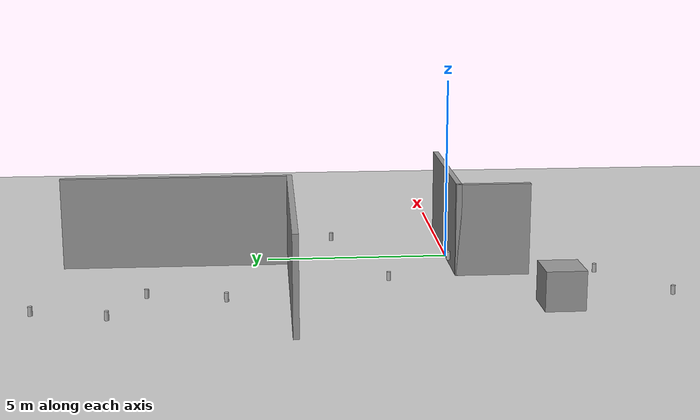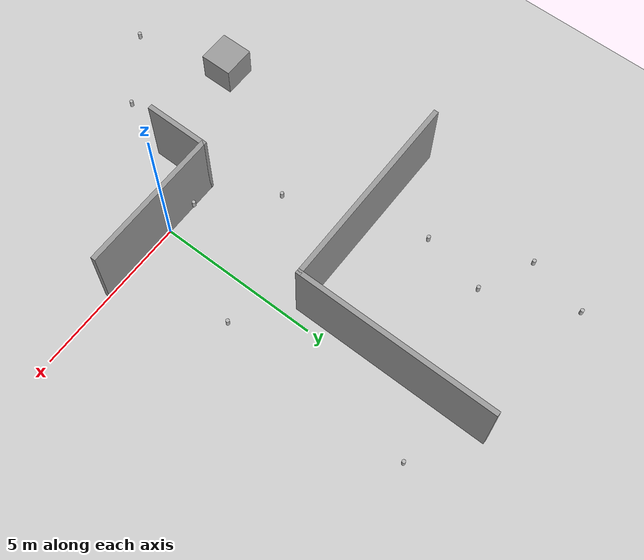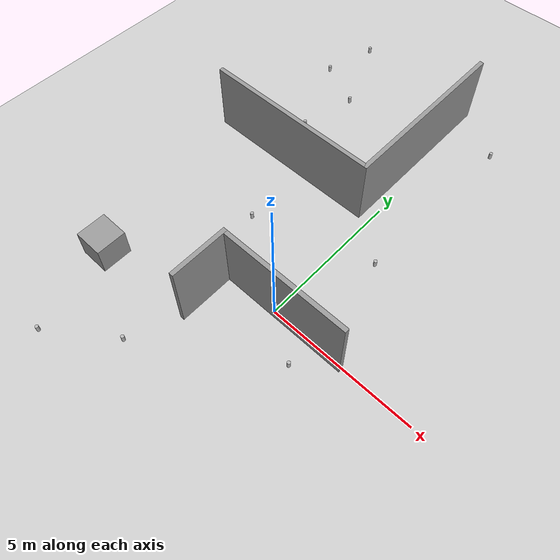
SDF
<sdf version="1.6">
 <world name="demo_world">
  <light name="sun" type="directional">
   <pose>0 0 10 0 -0 0</pose>
   <diffuse>0.8 0.8 0.8 1</diffuse>
   <specular>0.2 0.2 0.2 1</specular>
   <attenuation>
    <range>1000</range>
    <constant>0.9</constant>
    <linear>0.01</linear>
    <quadratic>0.001</quadratic>
   </attenuation>
   <direction>-0.5 0.1 -0.9</direction>
  </light>
  <model name="ground_plane">
   <static>1</static>
   <link name="link">
    <collision name="collision">
     <geometry><plane><normal>0 0 1</normal><size>100 100</size></plane></geometry>
     <surface>
      <contact><collide_bitmask>65535</collide_bitmask></contact>
      <friction><ode><mu>100</mu><mu2>50</mu2></ode></friction>
     </surface>
    </collision>
    <visual name="visual">
     <cast_shadows>0</cast_shadows>
     <geometry><plane><normal>0 0 1</normal><size>100 100</size></plane></geometry>
     <material>
      <script><uri>file://media/materials/scripts/gazebo.material</uri><name>Gazebo/Grey</name></script>
     </material>
    </visual>
   </link>
  </model>
  <gravity>0 0 -9.8</gravity>
  <magnetic_field>6e-06 2.3e-05 -4.2e-05</magnetic_field>
  <atmosphere type="adiabatic"/>
  <physics name="default_physics" default="0" type="ode">
   <max_step_size>0.001</max_step_size>
   <real_time_factor>1</real_time_factor>
   <real_time_update_rate>1000</real_time_update_rate>
  </physics>
  <scene><ambient>0.4 0.4 0.4 1</ambient><background>0.7 0.7 0.7 1</background><shadows>1</shadows></scene>
  <audio><device>default</device></audio>
  <spherical_coordinates>
   <surface_model>EARTH_WGS84</surface_model>
   <latitude_deg>0</latitude_deg>
   <longitude_deg>0</longitude_deg>
   <elevation>0</elevation>
   <heading_deg>90</heading_deg>
  </spherical_coordinates>
  <model name="beer">
   <link name="link">
    <pose>0 0 0.115 0 -0 0</pose>
    <inertial>
     <mass>0.39</mass>
     <inertia><ixx>0.00058</ixx><ixy>0</ixy><ixz>0</ixz><iyy>0.00058</iyy><iyz>0</iyz><izz>0.00019</izz></inertia>
    </inertial>
    <collision name="collision">
     <geometry><cylinder><radius>0.055</radius><length>0.23</length></cylinder></geometry>
    </collision>
    <visual name="visual">
     <geometry><cylinder><radius>0.055</radius><length>0.23</length></cylinder></geometry>
     <material>
      <script>
       <uri>model://beer/materials/scripts</uri>
       <uri>model://beer/materials/textures</uri>
       <name>Beer/Diffuse</name>
      </script>
     </material>
    </visual>
   </link>
   <pose>-4.47 -5.07998 0.189804 1.2e-05 6.7e-05 -0.000153</pose>
  </model>
  <model name="beer1">
   <link name="link">
    <pose>0 0 0.115 0 -0 0</pose>
    <inertial>
     <mass>0.39</mass>
     <inertia><ixx>0.00058</ixx><ixy>0</ixy><ixz>0</ixz><iyy>0.00058</iyy><iyz>0</iyz><izz>0.00019</izz></inertia>
    </inertial>
    <collision name="collision">
     <geometry><cylinder><radius>0.055</radius><length>0.23</length></cylinder></geometry>
    </collision>
    <visual name="visual">
     <geometry><cylinder><radius>0.055</radius><length>0.23</length></cylinder></geometry>
     <material>
      <script>
       <uri>model://beer/materials/scripts</uri>
       <uri>model://beer/materials/textures</uri>
       <name>Beer/Diffuse</name>
      </script>
     </material>
    </visual>
   </link>
   <pose>-0.999692 0.074507 0.189804 7.8e-05 -1e-06 -0.009092</pose>
  </model>
  <model name="beer2">
   <link name="link">
    <pose>0 0 0.115 0 -0 0</pose>
    <inertial>
     <mass>0.39</mass>
     <inertia><ixx>0.00058</ixx><ixy>0</ixy><ixz>0</ixz><iyy>0.00058</iyy><iyz>0</iyz><izz>0.00019</izz></inertia>
    </inertial>
    <collision name="collision">
     <geometry><cylinder><radius>0.055</radius><length>0.23</length></cylinder></geometry>
    </collision>
    <visual name="visual">
     <geometry><cylinder><radius>0.055</radius><length>0.23</length></cylinder></geometry>
     <material>
      <script>
       <uri>model://beer/materials/scripts</uri>
       <uri>model://beer/materials/textures</uri>
       <name>Beer/Diffuse</name>
      </script>
     </material>
    </visual>
   </link>
   <pose>1.49999 -0.999977 0.189792 3e-05 -2e-06 0.001629</pose>
  </model>
  <model name="Untitled">
   <pose>-1.99238 4.3002 0 0 -0 0</pose>
   <link name="Wall_0">
    <collision name="Wall_0_Collision">
     <geometry><box><size>6.25 0.15 2.5</size></box></geometry>
     <pose>0 0 1.25 0 -0 0</pose>
    </collision>
    <visual name="Wall_0_Visual">
     <pose>0 0 1.25 0 -0 0</pose>
     <geometry><box><size>6.25 0.15 2.5</size></box></geometry>
     <material>
      <script><uri>file://media/materials/scripts/gazebo.material</uri><name>Gazebo/Grey</name></script>
      <ambient>1 1 1 1</ambient>
     </material>
     <meta><layer>0</layer></meta>
    </visual>
    <pose>-1.4632 0.105746 0 0 -0 3.14159</pose>
   </link>
   <link name="Wall_2">
    <collision name="Wall_2_Collision">
     <geometry><box><size>4.5 0.15 2.5</size></box></geometry>
     <pose>0 0 1.25 0 -0 0</pose>
    </collision>
    <visual name="Wall_2_Visual">
     <pose>0 0 1.25 0 -0 0</pose>
     <geometry><box><size>4.5 0.15 2.5</size></box></geometry>
     <material>
      <script><uri>file://media/materials/scripts/gazebo.material</uri><name>Gazebo/Grey</name></script>
      <ambient>1 1 1 1</ambient>
     </material>
     <meta><layer>0</layer></meta>
    </visual>
    <pose>2.3382 -4.35575 0 0 -0 0</pose>
   </link>
   <link name="Wall_4">
    <collision name="Wall_4_Collision">
     <geometry><box><size>2 0.15 2.5</size></box></geometry>
     <pose>0 0 1.25 0 -0 0</pose>
    </collision>
    <visual name="Wall_4_Visual">
     <pose>0 0 1.25 0 -0 0</pose>
     <geometry><box><size>2 0.15 2.5</size></box></geometry>
     <material>
      <script><uri>file://media/materials/scripts/gazebo.material</uri><name>Gazebo/Grey</name></script>
      <ambient>1 1 1 1</ambient>
     </material>
     <meta><layer>0</layer></meta>
    </visual>
    <pose>0.163197 -5.28075 0 0 -0 -1.5708</pose>
   </link>
   <link name="Wall_6">
    <collision name="Wall_6_Collision">
     <geometry><box><size>6.25 0.15 2.5</size></box></geometry>
     <pose>0 0 1.25 0 -0 0</pose>
    </collision>
    <visual name="Wall_6_Visual">
     <pose>0 0 1.25 0 -0 0</pose>
     <geometry><box><size>6.25 0.15 2.5</size></box></geometry>
     <material>
      <script><uri>file://media/materials/scripts/gazebo.material</uri><name>Gazebo/Grey</name></script>
      <ambient>1 1 1 1</ambient>
     </material>
     <meta><layer>0</layer></meta>
    </visual>
    <pose>1.5868 3.15575 0 0 -0 1.5708</pose>
   </link>
   <static>1</static>
  </model>
  <model name="beer_0">
   <link name="link">
    <pose>0 0 0.115 0 -0 0</pose>
    <inertial>
     <mass>0.39</mass>
     <inertia><ixx>0.00058</ixx><ixy>0</ixy><ixz>0</ixz><iyy>0.00058</iyy><iyz>0</iyz><izz>0.00019</izz></inertia>
    </inertial>
    <collision name="collision">
     <geometry><cylinder><radius>0.055</radius><length>0.23</length></cylinder></geometry>
    </collision>
    <visual name="visual">
     <geometry><cylinder><radius>0.055</radius><length>0.23</length></cylinder></geometry>
     <material>
      <script>
       <uri>model://beer/materials/scripts</uri>
       <uri>model://beer/materials/textures</uri>
       <name>Beer/Diffuse</name>
      </script>
     </material>
    </visual>
   </link>
   <pose>-2.77892 1.90022 0.189806 2.5e-05 9.8e-05 -0.000237</pose>
  </model>
  <model name="beer_1">
   <link name="link">
    <pose>0 0 0.115 0 -0 0</pose>
    <inertial>
     <mass>0.39</mass>
     <inertia><ixx>0.00058</ixx><ixy>0</ixy><ixz>0</ixz><iyy>0.00058</iyy><iyz>0</iyz><izz>0.00019</izz></inertia>
    </inertial>
    <collision name="collision">
     <geometry><cylinder><radius>0.055</radius><length>0.23</length></cylinder></geometry>
    </collision>
    <visual name="visual">
     <geometry><cylinder><radius>0.055</radius><length>0.23</length></cylinder></geometry>
     <material>
      <script>
       <uri>model://beer/materials/scripts</uri>
       <uri>model://beer/materials/textures</uri>
       <name>Beer/Diffuse</name>
      </script>
     </material>
    </visual>
   </link>
   <pose>1.21725 3.17361 0.189802 -8e-06 3.1e-05 0.001539</pose>
  </model>
  <model name="beer_2">
   <link name="link">
    <pose>0 0 0.115 0 -0 0</pose>
    <inertial>
     <mass>0.39</mass>
     <inertia><ixx>0.00058</ixx><ixy>0</ixy><ixz>0</ixz><iyy>0.00058</iyy><iyz>0</iyz><izz>0.00019</izz></inertia>
    </inertial>
    <collision name="collision">
     <geometry><cylinder><radius>0.055</radius><length>0.23</length></cylinder></geometry>
    </collision>
    <visual name="visual">
     <geometry><cylinder><radius>0.055</radius><length>0.23</length></cylinder></geometry>
     <material>
      <script>
       <uri>model://beer/materials/scripts</uri>
       <uri>model://beer/materials/textures</uri>
       <name>Beer/Diffuse</name>
      </script>
     </material>
    </visual>
   </link>
   <pose>1.42639 9.23643 0.189793 -6e-06 4.3e-05 0.002479</pose>
  </model>
  <model name="beer_3">
   <link name="link">
    <pose>0 0 0.115 0 -0 0</pose>
    <inertial>
     <mass>0.39</mass>
     <inertia><ixx>0.00058</ixx><ixy>0</ixy><ixz>0</ixz><iyy>0.00058</iyy><iyz>0</iyz><izz>0.00019</izz></inertia>
    </inertial>
    <collision name="collision">
     <geometry><cylinder><radius>0.055</radius><length>0.23</length></cylinder></geometry>
    </collision>
    <visual name="visual">
     <geometry><cylinder><radius>0.055</radius><length>0.23</length></cylinder></geometry>
     <material>
      <script>
       <uri>model://beer/materials/scripts</uri>
       <uri>model://beer/materials/textures</uri>
       <name>Beer/Diffuse</name>
      </script>
     </material>
    </visual>
   </link>
   <pose>-5.43728 8.81452 0.189801 5e-06 1.8e-05 -0.000175</pose>
  </model>
  <model name="beer_4">
   <link name="link">
    <pose>0 0 0.115 0 -0 0</pose>
    <inertial>
     <mass>0.39</mass>
     <inertia><ixx>0.00058</ixx><ixy>0</ixy><ixz>0</ixz><iyy>0.00058</iyy><iyz>0</iyz><izz>0.00019</izz></inertia>
    </inertial>
    <collision name="collision">
     <geometry><cylinder><radius>0.055</radius><length>0.23</length></cylinder></geometry>
    </collision>
    <visual name="visual">
     <geometry><cylinder><radius>0.055</radius><length>0.23</length></cylinder></geometry>
     <material>
      <script>
       <uri>model://beer/materials/scripts</uri>
       <uri>model://beer/materials/textures</uri>
       <name>Beer/Diffuse</name>
      </script>
     </material>
    </visual>
   </link>
   <pose>-4.97721 10.663 0.189805 2e-05 9.6e-05 -0.007948</pose>
  </model>
  <model name="beer_5">
   <link name="link">
    <pose>0 0 0.115 0 -0 0</pose>
    <inertial>
     <mass>0.39</mass>
     <inertia><ixx>0.00058</ixx><ixy>0</ixy><ixz>0</ixz><iyy>0.00058</iyy><iyz>0</iyz><izz>0.00019</izz></inertia>
    </inertial>
    <collision name="collision">
     <geometry><cylinder><radius>0.055</radius><length>0.23</length></cylinder></geometry>
    </collision>
    <visual name="visual">
     <geometry><cylinder><radius>0.055</radius><length>0.23</length></cylinder></geometry>
     <material>
      <script>
       <uri>model://beer/materials/scripts</uri>
       <uri>model://beer/materials/textures</uri>
       <name>Beer/Diffuse</name>
      </script>
     </material>
    </visual>
   </link>
   <pose>-4.23155 6.0494 0.189791 5e-06 1.6e-05 -0.00021</pose>
  </model>
  <model name="beer_6">
   <link name="link">
    <pose>0 0 0.115 0 -0 0</pose>
    <inertial>
     <mass>0.39</mass>
     <inertia><ixx>0.00058</ixx><ixy>0</ixy><ixz>0</ixz><iyy>0.00058</iyy><iyz>0</iyz><izz>0.00019</izz></inertia>
    </inertial>
    <collision name="collision">
     <geometry><cylinder><radius>0.055</radius><length>0.23</length></cylinder></geometry>
    </collision>
    <visual name="visual">
     <geometry><cylinder><radius>0.055</radius><length>0.23</length></cylinder></geometry>
     <material>
      <script>
       <uri>model://beer/materials/scripts</uri>
       <uri>model://beer/materials/textures</uri>
       <name>Beer/Diffuse</name>
      </script>
     </material>
    </visual>
   </link>
   <pose>-3.81376 8.02829 0.189806 2.5e-05 9.9e-05 -0.000162</pose>
  </model>
  <model name="beer_7">
   <link name="link">
    <pose>0 0 0.115 0 -0 0</pose>
    <inertial>
     <mass>0.39</mass>
     <inertia><ixx>0.00058</ixx><ixy>0</ixy><ixz>0</ixz><iyy>0.00058</iyy><iyz>0</iyz><izz>0.00019</izz></inertia>
    </inertial>
    <collision name="collision">
     <geometry><cylinder><radius>0.055</radius><length>0.23</length></cylinder></geometry>
    </collision>
    <visual name="visual">
     <geometry><cylinder><radius>0.055</radius><length>0.23</length></cylinder></geometry>
     <material>
      <script>
       <uri>model://beer/materials/scripts</uri>
       <uri>model://beer/materials/textures</uri>
       <name>Beer/Diffuse</name>
      </script>
     </material>
    </visual>
   </link>
   <pose>-2.44851 -3.61724 0.189796 2.5e-05 0.000109 -0.000101</pose>
  </model>
  <model name="unit_box">
   <pose>-5.13109 -2.07353 0.6898 -0 -0 -0</pose>
   <link name="link">
    <inertial>
     <mass>1</mass>
     <inertia>
      <ixx>0.166667</ixx>
      <ixy>0</ixy>
      <ixz>0</ixz>
      <iyy>0.166667</iyy>
      <iyz>0</iyz>
      <izz>0.166667</izz>
     </inertia>
    </inertial>
    <collision name="collision"><geometry><box><size>1 1 1</size></box></geometry></collision>
    <visual name="visual">
     <geometry><box><size>1 1 1</size></box></geometry>
     <material>
      <script><name>Gazebo/Grey</name><uri>file://media/materials/scripts/gazebo.material</uri></script>
     </material>
    </visual>
   </link>
  </model>
 </world>
</sdf>
